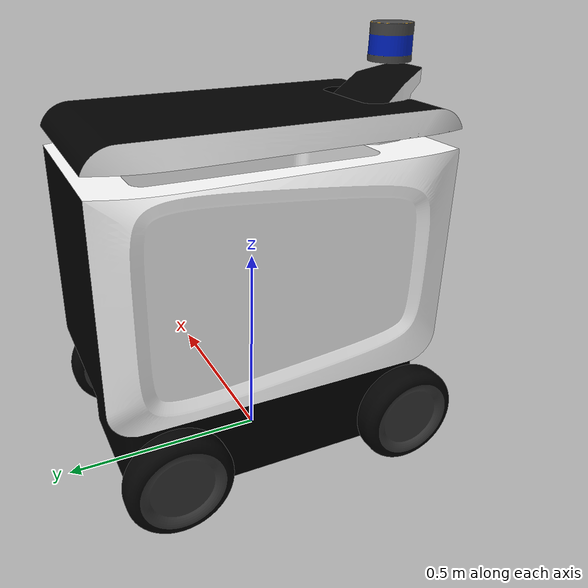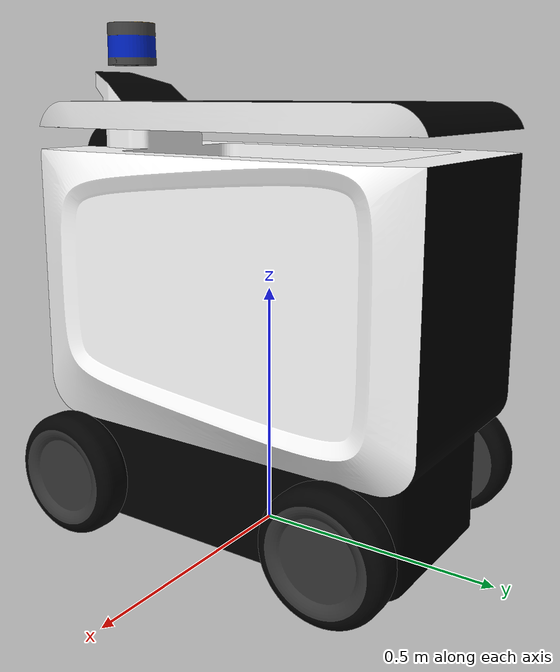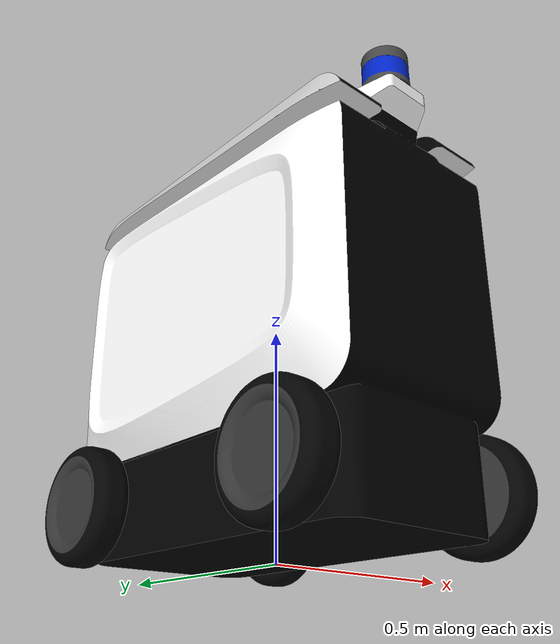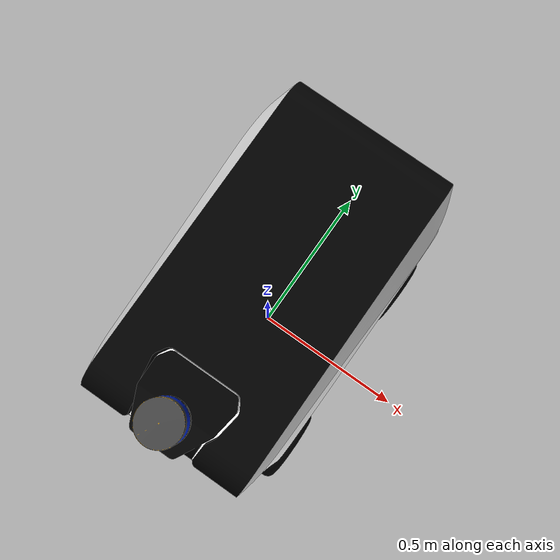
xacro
<?xml version="1.0"?>

<robot name="deliverybot" xmlns:xacro="http://wiki.ros.org/xacro">
    <xacro:include
        filename="$(find deliverybot_description)/models/deliverybot/xacro/deliverybot.xacro" />
    <xacro:include
        filename="$(find deliverybot_description)/models/deliverybot/xacro/sensors.xacro" />

    <!-- Realsense Camera -->
    <xacro:realsense_camera
        name="front"
        parent="base_link"
        orientation="${90 * deg_to_rad}"
        mirror="-1">
        <origin xyz="0 0.39875 0.25250" rpy="0 0 ${90*deg_to_rad}" />
    </xacro:realsense_camera>
    <xacro:realsense_camera
        name="rear"
        parent="base_link"
        orientation="${90 * deg_to_rad}"
        mirror="1">
        <origin xyz="0 -0.39875 0.25250" rpy="0 0 ${-90 * deg_to_rad}" />
    </xacro:realsense_camera>
    <xacro:lidar
        name="top"
        parent="base_link" />
</robot>

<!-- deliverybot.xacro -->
<robot name="deliverybot" xmlns:xacro="http://wiki.ros.org/xacro">
    <xacro:include
        filename="$(find deliverybot_description)/models/deliverybot/xacro/deliverybot_joints.xacro" />
    <xacro:include
        filename="$(find deliverybot_description)/models/deliverybot/xacro/deliverybot_control.xacro" />
    <xacro:property name="robot_namespace" value="/deliverybot" />

    <!-- Gazebo Plugins -->
    <gazebo>
        <plugin name="gazebo_ros2_control" filename="libgazebo_ros2_control.so">
            <robotNamespace>${robot_namespace}</robotNamespace>
            <parameters>$(find deliverybot_description)/models/deliverybot/config/controllers.yaml</parameters>
        </plugin>
    </gazebo>

    <!-- Math Constants -->
    <xacro:property name="deg_to_rad" value="0.01745329251994329577" />
    <xacro:property name="steer_limhigh_deg" value="30" />
    <xacro:property name="steer_limlow_deg" value="-30" />
    <!-- Robot Base Dimensions -->
    <xacro:property name="base_length" value="0.85" />
    <xacro:property name="base_width" value="0.35" />
    <xacro:property name="base_mass" value="72.3" />

    <!-- Wheel Link Dimensions -->
    <xacro:property name="wheel_radius" value="0.125" />
    <xacro:property name="wheel_thickness" value="0.1" />
    <xacro:property name="wheel_mass" value="3.5" />

    <!-- Steering Link Dimensions -->
    <xacro:property name="steer_radius" value="0.1" />
    <xacro:property name="steer_thickness" value="0.02" />
    <xacro:property name="steer_mass" value="1" />

    <!-- Velocity and Movement -->
    <xacro:property name="velocity_limlow" value="-5.0" />
    <xacro:property name="velocity_limhigh" value="8.0" />

    <!-- Axle Positions -->
    <xacro:property name="axle_length_offset" value="0.125" />
    <xacro:property name="axle_width_offset" value="0.1" />
    <xacro:property name="steer_offset" value="-0.15" />
    <!-- Dummy Link -->
    <link name="base_footprint" />
    <!-- Base Link -->
    <link name="base_link">
        <visual>
            <origin xyz="0 0 0" rpy="0 0 0" />
            <geometry>
                <mesh
                    filename="package://deliverybot_description/models/deliverybot/meshes/EVA_Body.dae" />
            </geometry>
        </visual>
        <collision>
            <origin xyz="0 0 0" rpy="0 0 0" />
            <geometry>
                <mesh
                    filename="package://deliverybot_description/models/deliverybot/meshes/EVA_Body.dae" />
            </geometry>
        </collision>
        <inertial>
            <origin xyz="0 0 0" rpy="0 0 0" />
            <mass value="64.3" />
            <inertia ixx="8.303" ixy="0" ixz="0" iyy="5.468" iyz="0.075" izz="6.02" />
        </inertial>
    </link>
    <!-- Dummy Joint -->
    <joint name="base_joint" type="fixed">
        <origin xyz="0 0 0.470" rpy="0 0 0" />
        <parent link="base_footprint" />
        <child link="base_link" />
    </joint>

    <link name="center_steer_link">
        <inertial>
            <origin rpy="0 0 0" xyz="0 0 0" />
            <mass value="${steer_mass}" />
            <inertia
                ixx="${steer_mass * (3.0 * steer_radius * steer_radius + steer_thickness * steer_thickness) / 12.0}"
                ixy="0.0" ixz="0.0"
                iyy="${steer_mass * (3.0 * steer_radius * steer_radius + steer_thickness * steer_thickness) / 12.0}"
                iyz="0.0"
                izz="${steer_mass * (steer_radius * steer_radius) / 2.0}" />
        </inertial>
    </link>
    <joint name="center_steer_joint" type="revolute">
        <parent link="base_link" />
        <child link="center_steer_link" />
        <origin xyz="0 ${base_length/2 - axle_length_offset} -0.345" rpy="0 0 0" />
        <axis xyz="0 0 1" />
        <limit effort="${steer_effort}" lower="${steer_limit_deg * deg_to_rad * -1.0}"
            upper="${steer_limit_deg * deg_to_rad}" velocity="${steer_velocity}" />
    </joint>

    <!-- Steerable Front Wheels -->
    <xacro:front_wheel_lr
        name="front_right"
        parent="base"
        reflect="-1"
        wheel_radius="${wheel_radius}"
        wheel_thickness="${wheel_thickness}"
        wheel_mass="${wheel_mass}"
        steer_radius="${steer_radius}"
        steer_thickness="${steer_thickness}"
        steer_mass="${steer_mass}"
        base_length="${base_length}"
        base_width="${base_width}"
        axle_length_offset="${axle_length_offset}"
        axle_width_offset="${axle_width_offset}"
        steer_height="${wheel_radius+steer_offset}"
        model_rotate="${pi}">
    </xacro:front_wheel_lr>

    <xacro:front_wheel_lr
        name="front_left"
        parent="base"
        reflect="1"
        wheel_radius="${wheel_radius}"
        wheel_thickness="${wheel_thickness}"
        wheel_mass="${wheel_mass}"
        steer_radius="${steer_radius}"
        steer_thickness="${steer_thickness}"
        steer_mass="${steer_mass}"
        base_length="${base_length}"
        base_width="${base_width}"
        axle_length_offset="${axle_length_offset}"
        axle_width_offset="${axle_width_offset}"
        steer_height="${wheel_radius+steer_offset}"
        model_rotate="0">
    </xacro:front_wheel_lr>
    <!--Rear
    Wheels -->
    <xacro:rear_wheel_lr
        name="rear_right"
        parent="base"
        reflect="-1"
        wheel_radius="${wheel_radius}"
        wheel_thickness="${wheel_thickness}"
        wheel_mass="${wheel_mass}"
        model_rotate="${pi}"
        base_length="${base_length}"
        base_width="${base_width}"
        axle_length_offset="${axle_length_offset}"
        axle_width_offset="${axle_width_offset}">
    </xacro:rear_wheel_lr>
    <xacro:rear_wheel_lr
        name="rear_left"
        parent="base"
        reflect="1"
        wheel_radius="${wheel_radius}"
        wheel_thickness="${wheel_thickness}"
        wheel_mass="${wheel_mass}"
        model_rotate="0"
        base_length="${base_length}"
        base_width="${base_width}"
        axle_length_offset="${axle_length_offset}"
        axle_width_offset="${axle_width_offset}">
    </xacro:rear_wheel_lr>
    <xacro:door
        name="door"
        parent="base">
    </xacro:door>

    <ros2_control name="GazeboSystem" type="system">
        <hardware>
            <plugin>gazebo_ros2_control/GazeboSystem</plugin>
        </hardware>
        <xacro:steering_control
            name="front_right"
            steer_limlow="${steer_limlow_deg * deg_to_rad}"
            steer_limhigh="${steer_limhigh_deg * deg_to_rad}" />
        <xacro:steering_control
            name="front_left"
            steer_limlow="${steer_limlow_deg * deg_to_rad}"
            steer_limhigh="${steer_limhigh_deg * deg_to_rad}" />
        <xacro:steering_control
            name="center"
            steer_limlow="${steer_limlow_deg * deg_to_rad}"
            steer_limhigh="${steer_limhigh_deg * deg_to_rad}" />
        <xacro:door_control
            name="door"
            door_limlow="${0 * deg_to_rad}"
            door_limhigh="${90 * deg_to_rad}" />
        <xacro:velocity_control
            name="rear_left"
            velocity_limlow="${velocity_limlow}"
            velocity_limhigh="${velocity_limhigh}" />
        <xacro:velocity_control
            name="rear_right"
            velocity_limlow="${velocity_limlow}"
            velocity_limhigh="${velocity_limhigh}" />
        <xacro:velocity_control
            name="front_right"
            velocity_limlow="${velocity_limlow}"
            velocity_limhigh="${velocity_limhigh}" />
        <xacro:velocity_control
            name="front_left"
            velocity_limlow="${velocity_limlow}"
            velocity_limhigh="${velocity_limhigh}" />
    </ros2_control>
</robot>

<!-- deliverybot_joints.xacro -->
<robot name="deliverybot" xmlns:xacro="http://wiki.ros.org/xacro">
    <xacro:property name="steer_effort" value="10.0" />
    <xacro:property name="steer_velocity"
        value="0.5" />
    <xacro:property name="steer_limit_deg" value="35.0" />
    <xacro:macro
        name="front_wheel_lr"
        params="
        name
        parent
        reflect
        wheel_radius
        wheel_thickness
        wheel_mass
        steer_radius
        steer_thickness
        steer_mass
        base_length
        base_width
        axle_length_offset
        axle_width_offset
        steer_height
        model_rotate">

        <link name="${name}_steer_link">
            <inertial>
                <origin rpy="0 0 0" xyz="0 0 0" />
                <mass value="${steer_mass}" />
                <inertia
                    ixx="${steer_mass * (3.0 * steer_radius * steer_radius + steer_thickness * steer_thickness) / 12.0}"
                    ixy="0.0" ixz="0.0"
                    iyy="${steer_mass * (3.0 * steer_radius * steer_radius + steer_thickness * steer_thickness) / 12.0}"
                    iyz="0.0"
                    izz="${steer_mass * (steer_radius * steer_radius) / 2.0}" />
            </inertial>
        </link>
        <joint name="${name}_steer_joint" type="revolute">
            <parent link="${parent}_link" />
            <child link="${name}_steer_link" />
            <origin
                xyz="${reflect*(base_width/2)} ${base_length/2-axle_length_offset} ${-0.345}"
                rpy="0 0 0" />
            <axis xyz="0 0 1" />
            <limit effort="${steer_effort}"
                lower="${steer_limit_deg * deg_to_rad * -1.0}"
                upper="${steer_limit_deg * deg_to_rad}"
                velocity="${steer_velocity}" />
        </joint>
        <link name="${name}_wheel_link">
            <visual>
                <origin xyz="0 0 0" rpy="0 ${model_rotate} 0" />
                <geometry>
                    <mesh
                        filename="package://deliverybot_description/models/deliverybot/meshes/EVA_Wheel.dae" />
                </geometry>
            </visual>
            <collision>
                <origin xyz="0 0 0" rpy="0 ${model_rotate} 0" />
                <geometry>
                    <mesh
                        filename="package://deliverybot_description/models/deliverybot/meshes/EVA_Wheel.dae" />
                </geometry>
                <surface>
                    <friction>
                        <ode>
                            <mu>0.7</mu>
                            <mu2>0.7</mu2>
                        </ode>
                    </friction>
                </surface>
            </collision>
            <inertial>
                <origin xyz="0 0 0" rpy="0 0 0" />
                <mass value="3.512" />
                <inertia ixx="0.02665" ixy="0" ixz="0" iyy="0.0148" iyz="0" izz="0.01479" />
            </inertial>
        </link>
        <joint name="${name}_wheel_joint" type="continuous">
            <parent link="${name}_steer_link" />
            <child link="${name}_wheel_link" />
            <origin xyz="${reflect * (wheel_thickness)} 0 0" rpy="${-90 * deg_to_rad} ${-pi} 0" />
            <axis xyz="1 0 0" />
        </joint>
        <gazebo reference="${name}_steer_link">
            <mu1 value="2.0" />
            <mu2 value="2.0" />
            <kp value="10000000.0" />
            <kd value="1.0" />
            <fdir1 value="0 1 0" />
        </gazebo>

        <gazebo reference="${name}_wheel_link">
            <mu1 value="2.0" />
            <mu2 value="2.0" />
            <kp value="10000000.0" />
            <kd value="1.0" />
            <fdir1 value="0 1 0" />
        </gazebo>
    </xacro:macro>
    <!-- Rear Wheel Links -->
    <xacro:macro
        name="rear_wheel_lr"
        params="
        name
        parent
        reflect
        wheel_radius
        wheel_thickness
        wheel_mass
        model_rotate
        base_length
        base_width
        axle_length_offset
        axle_width_offset">
        <link name="${name}_wheel_link">
            <visual>
                <origin xyz="0 0 0" rpy="0 ${model_rotate} 0" />
                <geometry>
                    <mesh
                        filename="package://deliverybot_description/models/deliverybot/meshes/EVA_Wheel.dae" />
                </geometry>
            </visual>
            <collision>
                <origin xyz="0 0 0" rpy="0 ${model_rotate} 0" />
                <geometry>
                    <mesh
                        filename="package://deliverybot_description/models/deliverybot/meshes/EVA_Wheel.dae" />
                </geometry>
                <surface>
                    <friction>
                        <ode>
                            <mu>0.7</mu>
                            <mu2>0.7</mu2>
                        </ode>
                    </friction>
                </surface>
            </collision>
            <inertial>
                <origin xyz="0 0 0" rpy="0 ${model_rotate} 0" />
                <mass value="3.512" />
                <inertia ixx="0.02665" ixy="0" ixz="0" iyy="0.0148" iyz="0" izz="0.01479" />
            </inertial>

        </link>
        <joint name="${name}_wheel_joint" type="continuous">
            <parent link="${parent}_link" />
            <child link="${name}_wheel_link" />
            <origin
                xyz="${reflect*(base_width/2 + wheel_thickness)} ${-(base_length/2-axle_length_offset)} ${-0.345}"
                rpy="${-90 * deg_to_rad} ${-pi} 0" />
            <axis xyz="1 0 0" />
        </joint>
        <gazebo reference="${name}_wheel_link">
            <mu1 value="2.0" />
            <mu2 value="2.0" />
            <kp value="10000000.0" />
            <kd value="1.0" />
            <fdir1 value="0 1 0" />
        </gazebo>
    </xacro:macro>
    <xacro:macro name="door"
        params="
        name
        parent">
        <link name="${name}_link">
            <visual>
                <geometry>
                    <mesh
                        filename="package://deliverybot_description/models/deliverybot/meshes/EVA_Lid.dae" />
                </geometry>
                <origin rpy="0 0 0" xyz="-0.002550 0.400 0.01750" />
            </visual>
            <collision>
                <origin rpy="0 0 0" xyz="0 0.400 0.01750" />
                <geometry>
                    <mesh
                        filename="package://deliverybot_description/models/deliverybot/meshes/EVA_Lid.dae" />
                </geometry>
            </collision>
            <inertial>
                <origin rpy="0 0 0" xyz="0 0 0" />
                <mass value="8" />
                <inertia ixx="0.4381" ixy="0" ixz="0" iyy="0.1637" iyz="0.005" izz="0.6" />
            </inertial>
        </link>
        <joint name="${name}_joint" type="revolute">
            <limit lower="0" upper="1.5708" effort="100" velocity="0.5" />
            <origin rpy="0 0 0" xyz="0 -0.415 0.35250" />
            <parent link="${parent}_link" />
            <child link="${name}_link" />
            <axis xyz="1 0 0" rpy="0 0 0" />
        </joint>
    </xacro:macro>
</robot>

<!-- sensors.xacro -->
<robot name="deliverybot" xmlns:xacro="http://wiki.ros.org/xacro">
    <xacro:macro
        name="realsense_camera"
        params="
        name
        parent
        orientation
        mirror
        *origin">

        <!-- Visual Component -->
        <link name="${name}_rgb_link_optical" />
        <joint name="${name}_rgb_joint_optical" type="fixed">
            <origin xyz="0.025 0 0" rpy="0 0 0" />
            <parent link="${name}_depth_link" />
            <child link="${name}_rgb_link_optical" />
        </joint>
        <gazebo reference="${name}_rgb_link_optical">
            <sensor type="camera" name="${name}_rgb_camera">
                <visualize>false</visualize>
                <update_rate>10.0</update_rate>
                <camera name="${name}_rgb_camera">
                    <pose>0 0 0 0 0 0</pose>
                    <horizontal_fov>1.487021</horizontal_fov>
                    <image>
                        <width>1280</width>
                        <height>720</height>
                        <format>B8G8R8</format>
                    </image>
                    <clip>
                        <near>0.011</near>
                        <far>10</far>
                    </clip>
                </camera>
                <plugin name="${name}_rgb_controller" filename="libgazebo_ros_camera.so">
                    <ros>
                        <namespace>d430</namespace>
                        <remapping>${name}_rgb/image_raw:=color/image_raw</remapping>
                        <remapping>${name}_rgb/camera_info:=camera_info</remapping>
                    </ros>
                    <alwaysOn>true</alwaysOn>
                    <updateRate>0.0</updateRate>
                    <cameraName>${name}_rgb_camera</cameraName>
                    <frame_name>${name}_rgb_link_optical</frame_name>
                </plugin>
            </sensor>
        </gazebo>

        <!-- Depth Component -->
        <link name="${name}_depth_link">
            <visual>
                <origin xyz="0 0 0" rpy="0 0 ${orientation}" />
                <geometry>
                    <mesh
                        filename="package://deliverybot_description/models/deliverybot/meshes/IntelRealsense.dae"
                        scale="0.1 0.1 0.1" />
                </geometry>
            </visual>
            <collision>
                <origin xyz="0 0 0" rpy="0 0 ${orientation}" />
                <geometry>
                    <mesh
                        filename="package://deliverybot_description/models/deliverybot/meshes/IntelRealsense.dae"
                        scale="0.1 0.1 0.1" />
                </geometry>
            </collision>
            <inertial>
                <origin xyz="0 0 0" rpy="0 0 ${orientation}" />
                <mass value="0.1" />
                <inertia ixx="0.001" ixy="0" ixz="0" iyy="0.005" iyz="0" izz="0.005" />
            </inertial>
        </link>
        <link name="${name}_depth_link_optical" />
        <joint name="${name}_depth_joint" type="fixed">
            <parent link="${parent}" />
            <child link="${name}_depth_link" />
            <xacro:insert_block name="origin" />
        </joint>
        <joint name="${name}_depth_joint_optical" type="fixed">
            <origin xyz="0 0 0" rpy="${-pi/2} 0 ${-pi/2}" />
            <parent link="${name}_depth_link" />
            <child link="${name}_depth_link_optical" />
        </joint>
        <gazebo reference="${name}_depth_link">
            <sensor type="depth" name="${name}_depth_camera">
                <visualize>false</visualize>
                <update_rate>10.0</update_rate>
                <always_on>true</always_on>
                <pose>0 0 0 0 0 0</pose>
                <camera name="${name}_depth_camera">
                    <horizontal_fov>1.487021</horizontal_fov>
                    <image>
                        <width>424</width>
                        <height>240</height>
                        <format>B8G8R8</format>
                    </image>
                    <clip>
                        <near>0.5</near>
                        <far>8</far>
                    </clip>
                </camera>
                <plugin name="${name}_depth_controller" filename="libgazebo_ros_camera.so">
                    <ros>
                        <namespace>d430</namespace>
                        <remapping>${name}_depth/image_raw:=color/image_raw</remapping>
                        <remapping>${name}_depth/depth/image:=depth/image_rect_raw</remapping>
                        <remapping>${name}_depth/camera_info:=camera_info</remapping>
                        <remapping>${name}_depth/depth/camera_info:=depth/camera_info</remapping>
                        <remapping>${name}_depth/points:=depth/points</remapping>
                    </ros>
                    <frame_name>${name}_depth_link_optical</frame_name>
                    <cameraName>${name}_depth_camera</cameraName>
                    <hack_baseline>0.07</hack_baseline>
                    <min_depth>0.05</min_depth>
                    <max_depth>8.0</max_depth>
                </plugin>
            </sensor>
        </gazebo>

    </xacro:macro>
    <xacro:macro
        name="lidar"
        params="
        name
        parent">
        <link name="${name}_lidar_link">
            <inertial>
                <origin xyz="0 0 -0.025" rpy="0 0 0" />
                <mass value="1.0" />
                <inertia ixx="${1.0* (3.0 * 0.10 * 0.10 + 0.20 * .20) / 12.0}"
                    ixy="0.0" ixz="0.0"
                    iyy="${1.0 * (3.0 * 0.10 * 0.10 + 0.20 * 0.20) / 12.0}"
                    iyz="0.0"
                    izz="${1.0 * (0.10 * 0.10) / 2.0}" />
            </inertial>
            <collision>
                <origin xyz="0 0 -0.025" rpy="0 0 0" />
                <geometry>
                    <mesh
                        filename="package://deliverybot_description/models/deliverybot/meshes/Velodyne.dae" />
                </geometry>
            </collision>
            <visual>
                <origin xyz="0 0 -0.025" rpy="0 0 0" />
                <geometry>
                    <mesh
                        filename="package://deliverybot_description/models/deliverybot/meshes/Velodyne.dae" />
                </geometry>
            </visual>
        </link>
        <joint name="${name}_lidar_joint" type="fixed">
            <parent link="${parent}" />
            <child link="${name}_lidar_link" />
            <origin xyz="0 -0.355 0.510" rpy="0 0 0" />
        </joint>
        <gazebo reference="${name}_lidar_link">
            <sensor name="velodyne" type="ray">
                <always_on>true</always_on>
                <visualize>true</visualize>
                <pose>0.0 0 0.0 0 0 0</pose>
                <update_rate>15</update_rate>
                <ray>
                    <scan>
                        <horizontal>
                            <samples>360</samples>
                            <resolution>1.00</resolution>
                            <min_angle>0.000000</min_angle>
                            <max_angle>6.280000</max_angle>
                        </horizontal>
                    </scan>
                    <range>
                        <min>0.120000</min>
                        <max>3.5</max>
                        <resolution>0.015</resolution>
                    </range>
                    <noise>
                        <type>gaussian</type>
                        <mean>0.0</mean>
                        <stddev>0.01</stddev>
                    </noise>
                </ray>
                <plugin name="velodyne_laserscan" filename="libgazebo_ros_ray_sensor.so">
                    <ros>
                        <remapping>~/out:=scan</remapping>
                    </ros>
                    <output_type>sensor_msgs/LaserScan</output_type>
                    <frame_name>${name}_lidar_link</frame_name>
                </plugin>
            </sensor>
        </gazebo>
    </xacro:macro>
    <xacro:macro name="depth_camera" params="name parent orientation mirror *origin">
        <link name="${name}_depth_link">
            <visual>
                <origin xyz="0 0 0" rpy="0 0 ${orientation}" />
                <geometry>
                    <mesh
                        filename="package://deliverybot_description/models/deliverybot/meshes/IntelRealsense.dae"
                        scale="0.1 0.1 0.1" />
                </geometry>
            </visual>
            <collision>
                <origin xyz="0 0 0" rpy="0 0 ${orientation}" />
                <geometry>
                    <mesh
                        filename="package://deliverybot_description/models/deliverybot/meshes/IntelRealsense.dae"
                        scale="0.1 0.1 0.1" />
                </geometry>
            </collision>
            <inertial>
                <origin xyz="0 0 0" rpy="0 0 ${orientation}" />
                <mass value="0.1" />
                <inertia ixx="0.001" ixy="0" ixz="0" iyy="0.005" iyz="0" izz="0.005" />
            </inertial>
        </link>
        <link name="${name}_depth_link_optical" />
        <joint name="${name}_depth_joint" type="fixed">
            <parent link="${parent}" />
            <child link="${name}_depth_link" />
            <xacro:insert_block name="origin" />
        </joint>
        <joint name="${name}_depth_joint_optical" type="fixed">
            <origin xyz="0 0 0" rpy="${-pi/2} 0 ${-pi/2}" />
            <parent link="${name}_depth_link" />
            <child link="${name}_depth_link_optical" />
        </joint>

        <gazebo reference="${name}_depth_link">
            <sensor name="${name}_depth_camera" type="depth">
                <visualize>true</visualize>
                <update_rate>30.0</update_rate>
                <camera name="${name}_camera">
                    <horizontal_fov>1.487021</horizontal_fov>
                    <image>
                        <width>640</width>
                        <height>480</height>
                        <format>B8G8R8</format>
                    </image>
                    <clip>
                        <near>0.05</near>
                        <far>3</far>
                    </clip>
                </camera>
                <plugin name="${name}_depth_camera_controller" filename="libgazebo_ros_camera.so">
                    <baseline>0.2</baseline>
                    <alwaysOn>true</alwaysOn>
                    <updateRate>0.0</updateRate>
                    <frame_name>${name}_depth_joint_optical</frame_name>
                    <pointCloudCutoff>0.5</pointCloudCutoff>
                    <pointCloudCutoffMax>3.0</pointCloudCutoffMax>
                    <distortionK1>0</distortionK1>
                    <distortionK2>0</distortionK2>
                    <distortionK3>0</distortionK3>
                    <distortionT1>0</distortionT1>
                    <distortionT2>0</distortionT2>
                    <CxPrime>0</CxPrime>
                    <Cx>0</Cx>
                    <Cy>0</Cy>
                    <focalLength>0</focalLength>
                    <hackBaseline>0</hackBaseline>
                </plugin>
            </sensor>
        </gazebo>
    </xacro:macro>
    <xacro:macro name="imu" params="name parent">
        <link name="${name}" />
        <joint name="${name}_joint" type="fixed">
            <parent link="${parent}" />
            <child link="${name}" />
            <origin xyz="0 0 0.1" rpy="0 0 0" />
        </joint>
        <gazebo reference="${name}">
            <sensor name="imu_sensor" type="imu">
                <plugin filename="libgazebo_ros_imu_sensor.so" name="imu_plugin">
                    <ros>
                        <remapping>~/out:=imu</remapping>
                    </ros>
                    <initial_orientation_as_reference>false</initial_orientation_as_reference>
                </plugin>
                <always_on>true</always_on>
                <update_rate>100</update_rate>
                <visualize>true</visualize>
                <imu>
                    <angular_velocity>
                        <x>
                            <noise type="gaussian">
                                <mean>0.0</mean>
                                <stddev>2e-4</stddev>
                                <bias_mean>0.0000075</bias_mean>
                                <bias_stddev>0.0000008</bias_stddev>
                            </noise>
                        </x>
                        <y>
                            <noise type="gaussian">
                                <mean>0.0</mean>
                                <stddev>2e-4</stddev>
                                <bias_mean>0.0000075</bias_mean>
                                <bias_stddev>0.0000008</bias_stddev>
                            </noise>
                        </y>
                        <z>
                            <noise type="gaussian">
                                <mean>0.0</mean>
                                <stddev>2e-4</stddev>
                                <bias_mean>0.0000075</bias_mean>
                                <bias_stddev>0.0000008</bias_stddev>
                            </noise>
                        </z>
                    </angular_velocity>
                    <linear_acceleration>
                        <x>
                            <noise type="gaussian">
                                <mean>0.0</mean>
                                <stddev>1.7e-2</stddev>
                                <bias_mean>0.1</bias_mean>
                                <bias_stddev>0.001</bias_stddev>
                            </noise>
                        </x>
                        <y>
                            <noise type="gaussian">
                                <mean>0.0</mean>
                                <stddev>1.7e-2</stddev>
                                <bias_mean>0.1</bias_mean>
                                <bias_stddev>0.001</bias_stddev>
                            </noise>
                        </y>
                        <z>
                            <noise type="gaussian">
                                <mean>0.0</mean>
                                <stddev>1.7e-2</stddev>
                                <bias_mean>0.1</bias_mean>
                                <bias_stddev>0.001</bias_stddev>
                            </noise>
                        </z>
                    </linear_acceleration>
                </imu>
            </sensor>
        </gazebo>
    </xacro:macro>
    <xacro:macro name="ackermann_odometry" params="parent">
        <gazebo>
            <plugin name="gazebo_ros_ackermann_drive" filename="libgazebo_ros_ackermann_drive.so">
                <update_rate>100.0</update_rate>

                <ros>
                    <remapping>odom:=wheel/odometry</remapping>
                    <remapping>distance:=wheel/distance</remapping>
                </ros>
                <!-- Wheels -->
                <front_left_joint>front_left_wheel_joint</front_left_joint>
                <front_right_joint>front_right_wheel_joint</front_right_joint>
                <rear_left_joint>rear_left_wheel_joint</rear_left_joint>
                <rear_right_joint>rear_right_wheel_joint</rear_right_joint>
                <left_steering_joint>front_left_steer_joint</left_steering_joint>
                <right_steering_joint>front_right_steer_joint</right_steering_joint>
                <steering_wheel_joint>center_steer_joint</steering_wheel_joint>

                <!-- Max absolute steer angle for tyre in radians -->
                <max_steer>0.610865</max_steer>

                <!-- Max absolute linear speed in m/s -->
                <max_speed>15</max_speed>

                <!-- PID Tuning -->
                <left_steering_pid_gain>1500 0 1</left_steering_pid_gain>
                <left_steering_i_range>0 0</left_steering_i_range>
                <right_steering_pid_gain>1500 0 1</right_steering_pid_gain>
                <right_steering_i_range>0 0</right_steering_i_range>
                <linear_velocity_pid_gain>1000 0 1</linear_velocity_pid_gain>
                <linear_velocity_i_range>0 0</linear_velocity_i_range>

                <!-- output -->
                <publish_odom>true</publish_odom>
                <publish_odom_tf>true</publish_odom_tf>
                <publish_wheel_tf>true</publish_wheel_tf>
                <publish_distance>true</publish_distance>

                <odometry_frame>odom</odometry_frame>
                <robot_base_frame>base_footprint</robot_base_frame>
            </plugin>
        </gazebo>
    </xacro:macro>
</robot>
